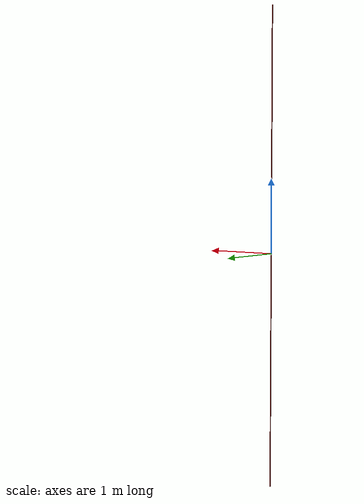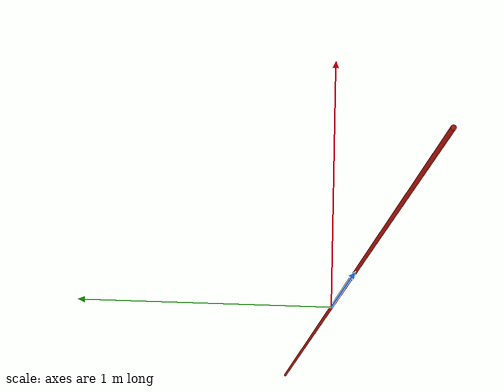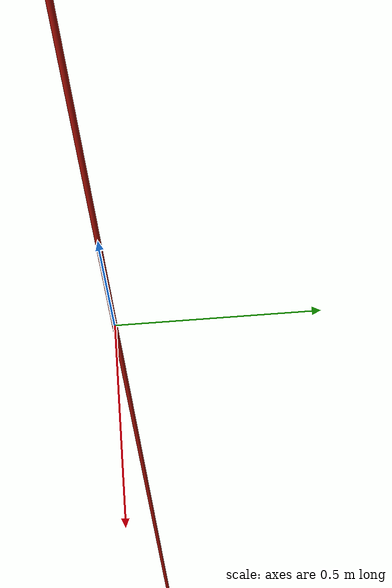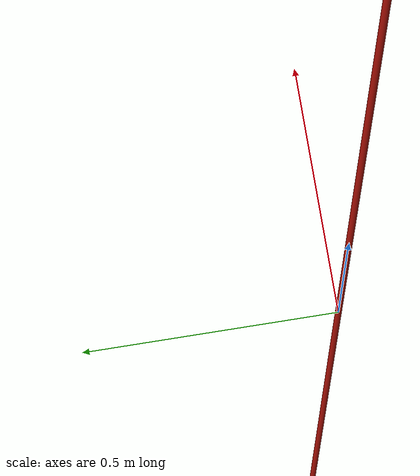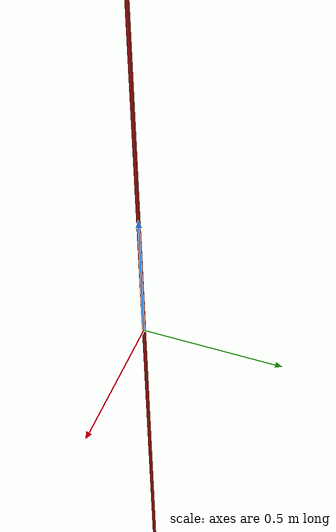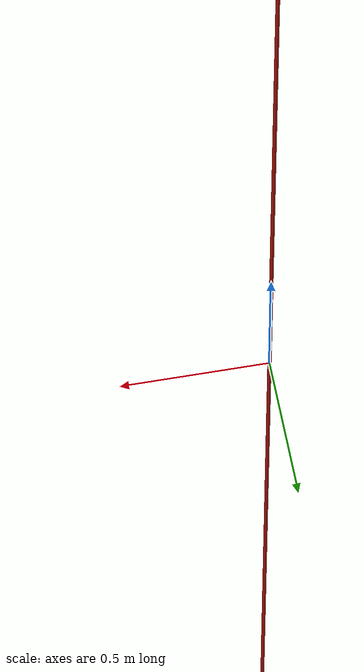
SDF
<?xml version='1.0' encoding='utf-8'?>
<sdf version='1.10'>
<model name='hose'>
  <link name='hose_link'>
    <enable_wind>false</enable_wind>
    <collision name='hose_collision'>
      <geometry><cylinder>
        <radius>0.00635</radius>
        <length>6.48</length>
      </cylinder></geometry>
      <surface>
        <friction><ode/></friction>
        <bounce/>
        <contact/>
      </surface>
    </collision>
    <visual name='hose_visual'>
      <geometry><cylinder>
        <radius>0.00635</radius>
        <length>6.48</length>
      </cylinder></geometry>
      <!-- EDITAL -->
      <material><ambient>0.671 0.063 0.024</ambient><diffuse>0.671 0.063 0.024</diffuse><specular>0.671 0.063 0.024</specular></material>
      <!-- EDITAL -->

    </visual>
  </link>
  <self_collide>false</self_collide>
  <static>true</static>
</model>
</sdf>
